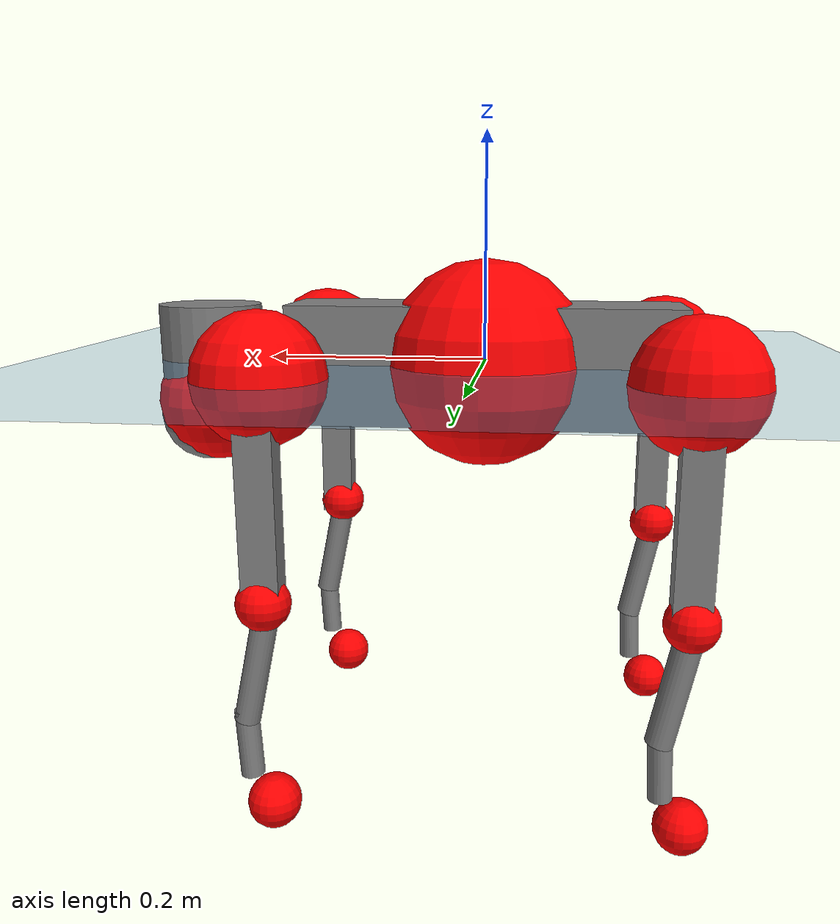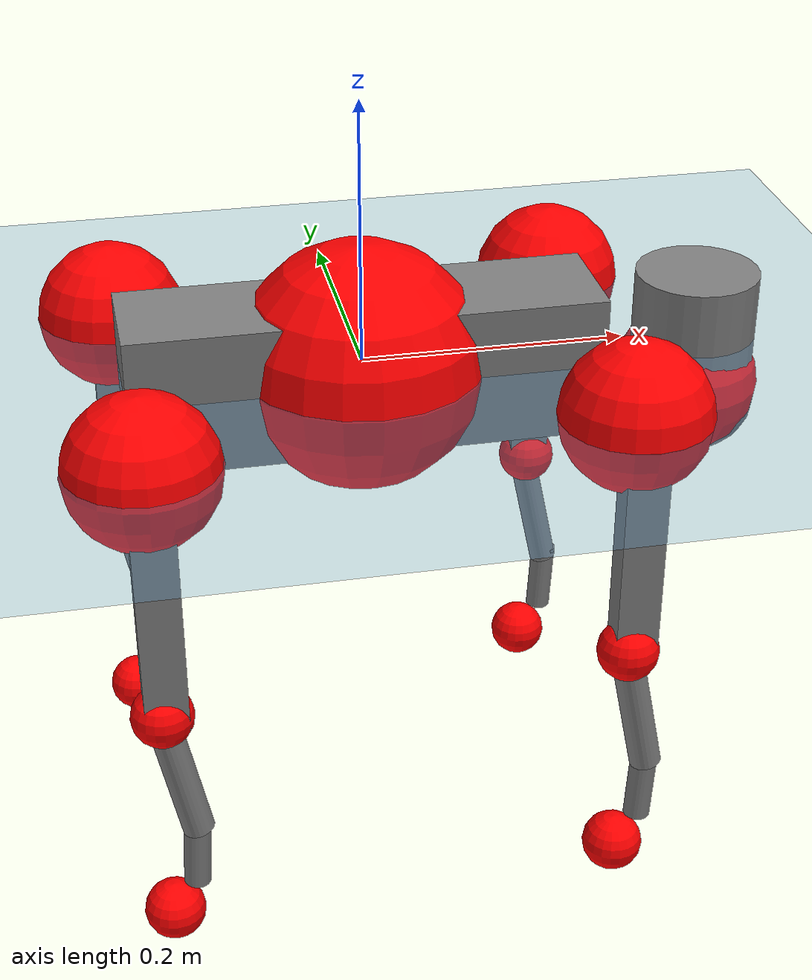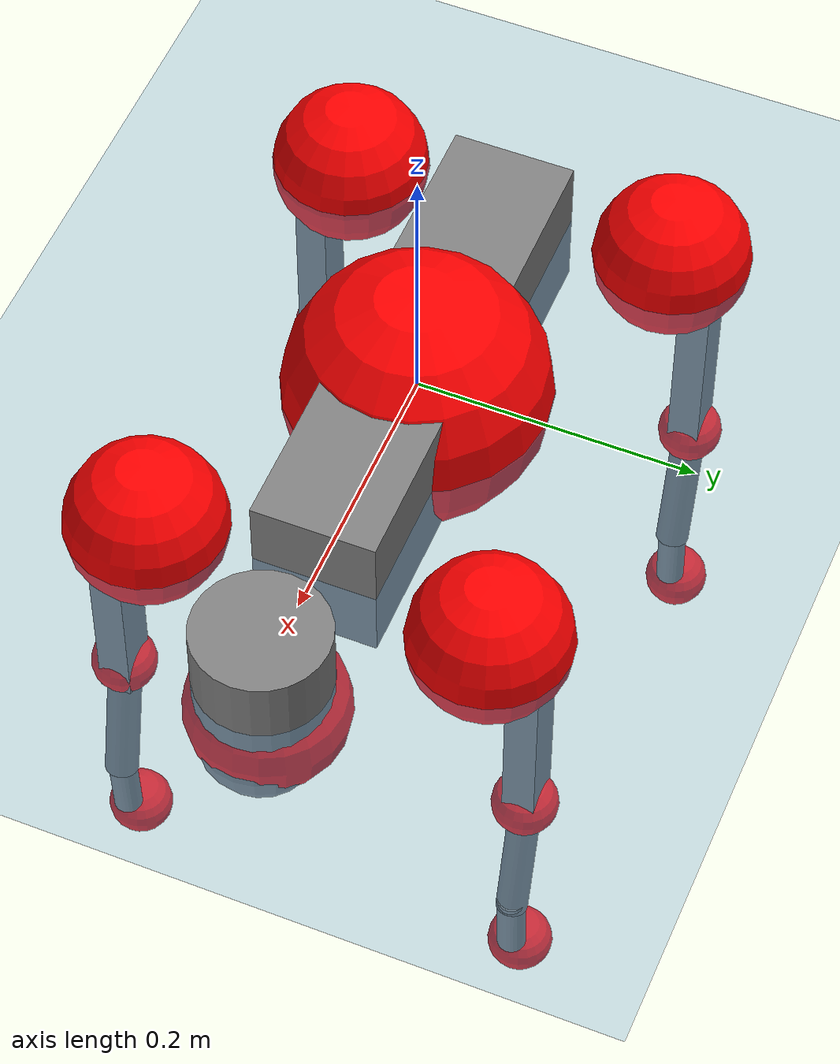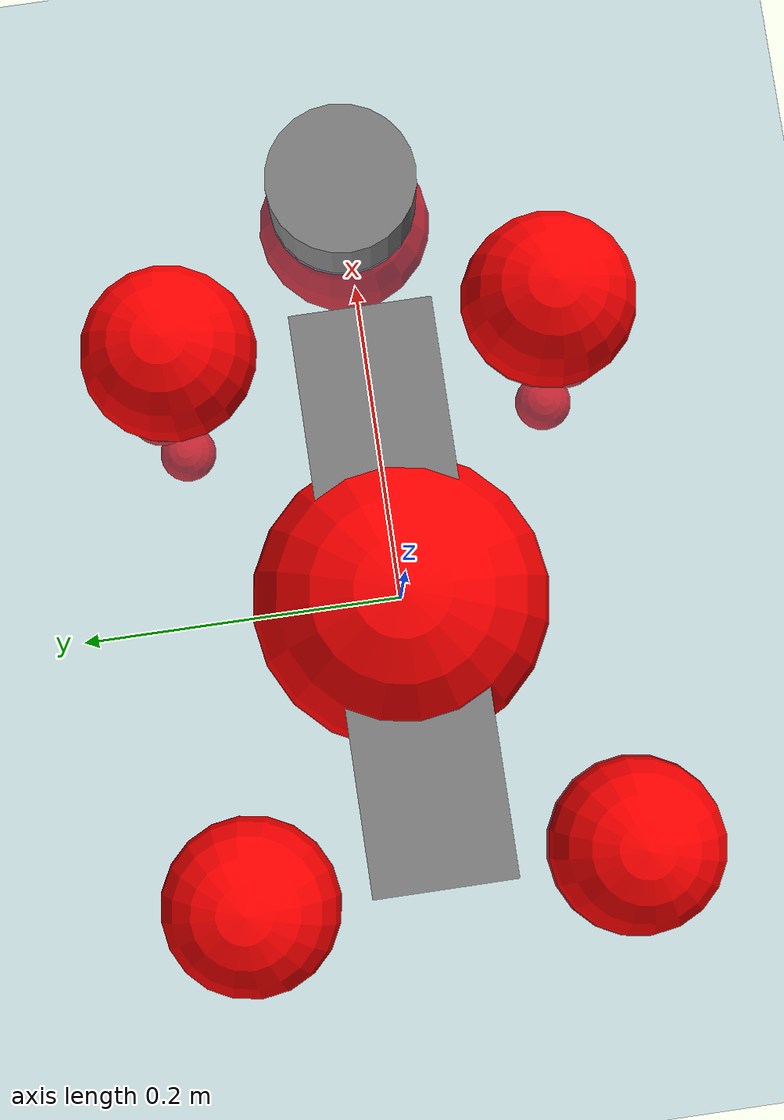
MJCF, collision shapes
<mujoco model="go2">
  <compiler angle="radian" assetdir="assets" balanceinertia="true" inertiafromgeom="false"/>

  <option timestep="0.005" density="1.2" viscosity="2e-05"/>

  <size nkey="1"/>

  <visual>
    <quality shadowsize="8192"/>
    <map shadowclip="0.5"/>
  </visual>

  <default>
    <default class="/">
      <geom contype="0" conaffinity="0" group="1" solref="-1000 -80"/>
      <site size="0.01 0.005 0.005" group="5"/>
      <general forcelimited="true" biastype="affine" gainprm="20" biasprm="0 -20 -0.5"/>
      <default class="go2">
        <joint armature="0.01" damping="0.01" frictionloss="0.2"/>
        <geom condim="1" margin="0.001"/>
        <default class="visual">
          <geom type="mesh" group="2"/>
        </default>
        <default class="collision">
          <geom group="3"/>
          <default class="foot">
            <geom size="0.022 0 0" condim="6" priority="1" friction="0.8 0.02 0.01" solimp="0.015 1 0.022"/>
          </default>
        </default>
        <default class="reward_collision_sphere">
          <geom group="5" rgba="1 0 0 1"/>
        </default>
      </default>
    </default>
  </default>

  <asset>
    <texture type="skybox" colorspace="auto" name="//unnamed_texture_0" builtin="gradient" rgb1="0.95 0.95 0.95" rgb2="0.95 0.95 0.95" width="100" height="600"/>
    <texture type="2d" colorspace="auto" name="texplane" builtin="checker" rgb1="0.345 0.575 0.748" rgb2="0.345 0.575 0.748" markrgb="1 1 1" width="512" height="512"/>
    <material name="MatPlane" class="/" texture="texplane" texuniform="true" texrepeat="2 2" specular="0.9"/>
    <material name="metal" class="/" rgba="0.9 0.95 0.95 1"/>
    <material name="black" class="/" rgba="0 0 0 1"/>
    <material name="white" class="/"/>
    <material name="gray" class="/" rgba="0.671705 0.692426 0.77427 1"/>
    <mesh name="base_0" class="/" file="base_0.obj"/>
    <mesh name="base_1" class="/" file="base_1.obj"/>
    <mesh name="base_2" class="/" file="base_2.obj"/>
    <mesh name="base_3" class="/" file="base_3.obj"/>
    <mesh name="base_4" class="/" file="base_4.obj"/>
    <mesh name="hip_0" class="/" file="hip_0.obj"/>
    <mesh name="hip_1" class="/" file="hip_1.obj"/>
    <mesh name="thigh_0" class="/" file="thigh_0.obj"/>
    <mesh name="thigh_1" class="/" file="thigh_1.obj"/>
    <mesh name="thigh_mirror_0" class="/" file="thigh_mirror_0.obj"/>
    <mesh name="thigh_mirror_1" class="/" file="thigh_mirror_1.obj"/>
    <mesh name="calf_0" class="/" file="calf_0.obj"/>
    <mesh name="calf_1" class="/" file="calf_1.obj"/>
    <mesh name="calf_mirror_0" class="/" file="calf_mirror_0.obj"/>
    <mesh name="calf_mirror_1" class="/" file="calf_mirror_1.obj"/>
    <mesh name="foot" class="/" file="foot.obj"/>
  </asset>

  <worldbody>
    <geom name="floor" class="/" size="100 100 0.125" type="plane" group="0" material="MatPlane"/>
    <light name="toplight_shadow" class="/" pos="0 0 5" dir="0.0990148 0.0990148 -0.990148" type="directional" ambient="0.04 0.04 0.04" diffuse="0.55 0.55 0.55" specular="0.12 0.12 0.12"/>
    <light name="toplight_fill" class="/" pos="0 0 5" dir="0.0990148 0.0990148 -0.990148" type="directional" castshadow="false" ambient="0.04 0.04 0.04" diffuse="0.3 0.3 0.3" specular="0.08 0.08 0.08"/>
    <body name="trunk" childclass="go2" pos="-0.000842944 -8.98242e-05 -0.00258458" quat="0.999999 0.000177163 -0.000752337 0.0011237">
      <inertial pos="0.0177575 0.0026493 -0.00487612" quat="0.00888361 0.707973 0.00466549 0.706168" mass="5.7505" diaginertia="0.0682539 0.127114 0.012654"/>
      <joint name="//unnamed_joint_0" type="free" armature="0" damping="0" frictionloss="0"/>
      <geom name="//unnamed_geom_1" class="visual" material="black" mesh="base_0"/>
      <geom name="//unnamed_geom_2" class="visual" material="black" mesh="base_1"/>
      <geom name="//unnamed_geom_3" class="visual" material="black" mesh="base_2"/>
      <geom name="//unnamed_geom_4" class="visual" material="white" mesh="base_3"/>
      <geom name="//unnamed_geom_5" class="visual" material="gray" mesh="base_4"/>
      <geom name="trunk_1" class="collision" size="0.176902 0.0439669 0.0536067" type="box"/>
      <geom name="trunk_2" class="collision" size="0.0470234 0.042321" pos="0.258418 0 0.00870488" type="cylinder"/>
      <geom name="trunk_3" class="collision" size="0.044202" pos="0.265672 0 -0.0522293"/>
      <geom name="//unnamed_geom_9" class="reward_collision_sphere" size="0.0940468"/>
      <geom name="//unnamed_geom_10" class="reward_collision_sphere" size="0.0564281" pos="0.253884 0 -0.039172"/>
      <site name="imu" pos="-0.0285468 0.00851585 0.0238331" size="0.00940468"/>
      <camera name="track" pos="0 -2.08837 0" quat="0.707107 0.707107 0 0" mode="trackcom"/>
      <camera name="ego_camera" pos="0.282899 0 0.039172" quat="-0.5 -0.5 0.5 0.5"/>
      <body name="FL_hip" pos="0.175849 0.0503175 0.0013164" quat="1 3.28301e-06 -2.77584e-06 4.0413e-05">
        <inertial pos="-0.00758363 0.00274505 -0.00222465" quat="0.49755 0.50632 0.494801 0.501255" mass="0.551456" diaginertia="0.000547147 0.000730337 0.000235513"/>
        <joint name="FL_hip_joint" pos="0 0 0" axis="0.999976 -0.00673782 0.0012838" range="-1.04585 1.07747" armature="0.00932445" damping="0" frictionloss="0.200833"/>
        <geom name="//unnamed_geom_11" class="visual" material="metal" mesh="hip_0"/>
        <geom name="//unnamed_geom_12" class="visual" material="gray" mesh="hip_1"/>
        <geom name="//unnamed_geom_13" class="collision" size="0.0432615 0.0188094" pos="0 0.0835349 0" quat="0.707107 0.707107 0 0" type="cylinder"/>
        <geom name="//unnamed_geom_14" class="reward_collision_sphere" size="0.0564281" pos="0 0.073093 0"/>
        <body name="FL_thigh" pos="-0.00349372 0.100637 0.00206886" quat="1 0.000144272 -2.76719e-05 5.07068e-05">
          <inertial pos="-0.00274966 -0.0231302 -0.0288367" quat="0.829424 0.0861781 -0.0212787 0.551522" mass="0.914157" diaginertia="0.00347471 0.00699926 0.000409958"/>
          <joint name="FL_thigh_joint" pos="0 0 0" axis="0.00226506 0.999997 0.000804878" stiffness="0.00971327" range="-1.59833 3.48527" armature="0.00838275" damping="0.0175522" frictionloss="0.188872"/>
          <geom name="//unnamed_geom_15" class="visual" material="metal" mesh="thigh_0"/>
          <geom name="//unnamed_geom_16" class="visual" material="gray" mesh="thigh_1"/>
          <geom name="//unnamed_geom_17" class="collision" size="0.10016 0.0115207 0.015988" pos="0 0 -0.092707" quat="0.707107 0 0.707107 0" type="box"/>
          <body name="FL_calf" pos="0.000547408 -7.7405e-05 -0.186112" quat="1 2.60261e-06 7.97073e-06 -1.10062e-05">
            <inertial pos="0.00343838 -0.00330513 -0.123469" quat="0.71132 0.00242479 -0.00520282 0.702845" mass="0.20007" diaginertia="0.000876832 0.00179428 2.64149e-05"/>
            <joint name="FL_calf_joint" pos="0 0 0" axis="0.0125998 0.999911 0.00437869" range="-2.77013 -0.800212" armature="0.00971015" damping="0.00122694" frictionloss="0.211729"/>
            <geom name="//unnamed_geom_18" class="visual" material="gray" mesh="calf_0"/>
            <geom name="//unnamed_geom_19" class="visual" material="black" mesh="calf_1"/>
            <geom name="FL_calf0" class="collision" size="0.0112856 0.0564281" pos="0.00725383 0 -0.0522293" quat="0.994493 0 -0.104807 0" type="cylinder"/>
            <geom name="//unnamed_geom_21" class="collision" size="0.0103451 0.0305652" pos="0.0181346 0 -0.128832" quat="0.999688 0 0.0249974 0" type="cylinder"/>
            <geom name="//unnamed_geom_22" class="visual" pos="0 0 -0.185414" quat="1 0 0 0" material="black" mesh="foot"/>
            <geom name="FL_foot" class="foot" size="0.0156015" pos="-0.00181346 0 -0.185414"/>
            <geom name="//unnamed_geom_24" class="reward_collision_sphere" size="0.0235117"/>
            <geom name="//unnamed_geom_25" class="reward_collision_sphere" size="0.0235117" pos="-0.00181346 0 -0.185414"/>
            <site name="FL_foot" class="foot" pos="-0.00181346 0 -0.185414" size="0.00940468"/>
          </body>
        </body>
      </body>
      <body name="FR_hip" pos="0.17539 -0.0476942 0.0018683" quat="0.999999 -2.00976e-05 -0.00109821 -0.000761408">
        <inertial pos="-0.00461823 -0.00164535 0.000512932" quat="0.502288 0.497857 0.507344 0.49239" mass="0.585028" diaginertia="0.00053744 0.000738714 0.000238339"/>
        <joint name="FR_hip_joint" pos="0 0 0" axis="0.999966 0.00786832 0.00264773" range="-1.10321 1.02092" armature="0.00905279" damping="0" frictionloss="0.20764"/>
        <geom name="//unnamed_geom_26" class="visual" pos="0 1.51318e-09 6.49035e-08" quat="4.63268e-05 1 0 0" material="metal" mesh="hip_0"/>
        <geom name="//unnamed_geom_27" class="visual" pos="0 2.45305e-09 -1.60531e-07" quat="4.63268e-05 1 0 0" material="gray" mesh="hip_1"/>
        <geom name="//unnamed_geom_28" class="collision" size="0.0432615 0.0188094" pos="0 -0.0835349 0" quat="0.707107 0.707107 0 0" type="cylinder"/>
        <geom name="//unnamed_geom_29" class="reward_collision_sphere" size="0.0564281" pos="0 -0.073093 0"/>
        <body name="FR_thigh" pos="-0.000337268 -0.101723 0.000781349" quat="1 5.76624e-05 -2.1934e-05 -0.000502164">
          <inertial pos="-0.0034128 0.0241347 -0.0283267" quat="0.550704 -0.0194984 0.0818344 0.83045" mass="0.988048" diaginertia="0.0036627 0.00700239 0.000442436"/>
          <joint name="FR_thigh_joint" pos="0 0 0" axis="-0.00132147 -0.999952 0.00973743" stiffness="0.0128529" range="-3.49014 1.53577" armature="0.00906568" damping="0.00557435" frictionloss="0.163564"/>
          <geom name="//unnamed_geom_30" class="visual" material="metal" mesh="thigh_mirror_0"/>
          <geom name="//unnamed_geom_31" class="visual" material="gray" mesh="thigh_mirror_1"/>
          <geom name="//unnamed_geom_32" class="collision" size="0.10016 0.0115207 0.015988" pos="0 0 -0.092707" quat="0.707107 0 0.707107 0" type="box"/>
          <body name="FR_calf" pos="-0.00336132 -0.00158682 -0.18294" quat="1 0.00023953 0.000142302 0.000379579">
            <inertial pos="0.00677498 -0.00197605 -0.120736" quat="0.70226 0.00285648 0.0110139 0.71183" mass="0.196394" diaginertia="0.00088152 0.00181498 2.501e-05"/>
            <joint name="FR_calf_joint" pos="0 0 0" axis="-0.000670079 -0.999999 -0.0014948" stiffness="0.00266121" range="0.826174 2.72945" armature="0.00929574" damping="0" frictionloss="0.178019"/>
            <geom name="//unnamed_geom_33" class="visual" material="gray" mesh="calf_mirror_0"/>
            <geom name="//unnamed_geom_34" class="visual" material="black" mesh="calf_mirror_1"/>
            <geom name="FR_calf0" class="collision" size="0.0122261 0.0564281" pos="0.00906729 0 -0.0522293" quat="0.995004 0 -0.0998334 0" type="cylinder"/>
            <geom name="//unnamed_geom_36" class="collision" size="0.0103451 0.0305652" pos="0.0181346 0 -0.128832" quat="0.999688 0 0.0249974 0" type="cylinder"/>
            <geom name="//unnamed_geom_37" class="visual" pos="0 0 -0.185414" quat="1 0 0 0" material="black" mesh="foot"/>
            <geom name="FR_foot" class="foot" size="0.0207056" pos="-0.00181346 0 -0.185414"/>
            <geom name="//unnamed_geom_39" class="reward_collision_sphere" size="0.0235117"/>
            <geom name="//unnamed_geom_40" class="reward_collision_sphere" size="0.0235117" pos="-0.00181346 0 -0.185414"/>
            <site name="FR_foot" class="foot" pos="-0.00181346 0 -0.185414" size="0.00940468"/>
          </body>
        </body>
      </body>
      <body name="RL_hip" pos="-0.175208 0.0466286 0.00108405" quat="1 -0.000164963 0.00021297 0.000462609">
        <inertial pos="0.00524783 -0.000360111 -0.00244764" quat="0.505184 0.497975 0.496395 0.500401" mass="0.556742" diaginertia="0.000523718 0.000727459 0.000227328"/>
        <joint name="RL_hip_joint" pos="0 0 0" axis="-0.999971 0.00756433 -0.000243838" range="-1.10443 1.0997" armature="0.0106723" damping="0.0147645" frictionloss="0.191275"/>
        <geom name="//unnamed_geom_41" class="visual" pos="-3.15717e-10 0 -6.18878e-08" quat="4.63268e-05 0 1 0" material="metal" mesh="hip_0"/>
        <geom name="//unnamed_geom_42" class="visual" pos="-5.11815e-10 0 -5.48857e-08" quat="4.63268e-05 0 1 0" material="gray" mesh="hip_1"/>
        <geom name="//unnamed_geom_43" class="collision" size="0.0432615 0.0188094" pos="0 0.0835349 0" quat="0.707107 0.707107 0 0" type="cylinder"/>
        <geom name="//unnamed_geom_44" class="reward_collision_sphere" size="0.0564281" pos="0 0.073093 0"/>
        <body name="RL_thigh" pos="-0.00102544 0.0971299 3.01161e-05" quat="0.999999 -0.00108316 0.000528713 -0.000305761">
          <inertial pos="-0.000948079 -0.0254823 -0.0310263" quat="0.8297 0.0845074 -0.0201205 0.551409" mass="0.982239" diaginertia="0.00387793 0.00736682 0.000464506"/>
          <joint name="RL_thigh_joint" pos="0 0 0" axis="0.0155689 0.999846 0.00810885" stiffness="0.0105352" range="-0.56446 4.54309" armature="0.00973889" damping="0.00483438" frictionloss="0.195708"/>
          <geom name="//unnamed_geom_45" class="visual" material="metal" mesh="thigh_0"/>
          <geom name="//unnamed_geom_46" class="visual" material="gray" mesh="thigh_1"/>
          <geom name="//unnamed_geom_47" class="collision" size="0.10016 0.0115207 0.015988" pos="0 0 -0.092707" quat="0.707107 0 0.707107 0" type="box"/>
          <body name="RL_calf" pos="-0.00156741 0.000474562 -0.188458" quat="0.999999 0.000164274 -0.000920201 0.000784001">
            <inertial pos="0.00305309 0.00191923 -0.125373" quat="0.719076 -0.00500681 -0.00594707 0.694888" mass="0.195406" diaginertia="0.000884389 0.00173562 2.59577e-05"/>
            <joint name="RL_calf_joint" pos="0 0 0" axis="-0.00754089 0.999969 -0.00215812" stiffness="0.00578749" range="-2.74198 -0.882181" armature="0.0107429" damping="0" frictionloss="0.191011"/>
            <geom name="//unnamed_geom_48" class="visual" material="gray" mesh="calf_0"/>
            <geom name="//unnamed_geom_49" class="visual" material="black" mesh="calf_1"/>
            <geom name="RL_calf0" class="collision" size="0.0122261 0.0564281" pos="0.00906729 0 -0.0522293" quat="0.995004 0 -0.0998334 0" type="cylinder"/>
            <geom name="//unnamed_geom_51" class="collision" size="0.0103451 0.0305652" pos="0.0181346 0 -0.128832" quat="0.999688 0 0.0249974 0" type="cylinder"/>
            <geom name="//unnamed_geom_52" class="visual" pos="0 0 -0.185414" quat="1 0 0 0" material="black" mesh="foot"/>
            <geom name="RL_foot" class="foot" size="0.019655" pos="-0.00181346 0 -0.185414"/>
            <geom name="//unnamed_geom_54" class="reward_collision_sphere" size="0.0235117"/>
            <geom name="//unnamed_geom_55" class="reward_collision_sphere" size="0.0235117" pos="-0.00181346 0 -0.185414"/>
            <site name="RL_foot" class="foot" pos="-0.00181346 0 -0.185414" size="0.00940468"/>
          </body>
        </body>
      </body>
      <body name="RR_hip" pos="-0.172677 -0.0492235 -0.00248903" quat="1 0.000366602 -0.000353399 -4.74581e-06">
        <inertial pos="0.00213968 -0.0037621 -0.000919591" quat="0.495412 0.49708 0.509224 0.498166" mass="0.565622" diaginertia="0.00057816 0.000769009 0.000251854"/>
        <joint name="RR_hip_joint" pos="0 0 0" axis="-0.999924 0.0112745 -0.00504488" stiffness="0.00129234" range="-1.06329 1.04693" armature="0.00935764" damping="0.00860592" frictionloss="0.210546"/>
        <geom name="//unnamed_geom_56" class="visual" pos="3.20476e-10 1.51318e-09 -1.26791e-07" quat="2.14617e-09 4.63268e-05 4.63268e-05 -1" material="metal" mesh="hip_0"/>
        <geom name="//unnamed_geom_57" class="visual" pos="5.00045e-10 2.45305e-09 1.05646e-07" quat="2.14617e-09 4.63268e-05 4.63268e-05 -1" material="gray" mesh="hip_1"/>
        <geom name="//unnamed_geom_58" class="collision" size="0.0432615 0.0188094" pos="0 -0.0835349 0" quat="0.707107 0.707107 0 0" type="cylinder"/>
        <geom name="//unnamed_geom_59" class="reward_collision_sphere" size="0.0564281" pos="0 -0.073093 0"/>
        <body name="RR_thigh" pos="0.00156792 -0.0989439 -0.0021882" quat="1 -7.18731e-05 0.000381032 -0.000524371">
          <inertial pos="-0.00130149 0.0226126 -0.0299803" quat="0.558307 -0.013659 0.087444 0.8249" mass="0.933844" diaginertia="0.00379212 0.00726378 0.000436386"/>
          <joint name="RR_thigh_joint" pos="0 0 0" axis="-0.00623345 -0.999912 0.01171" range="-4.54285 0.472516" armature="0.00930532" damping="0.0041571" frictionloss="0.195274"/>
          <geom name="//unnamed_geom_60" class="visual" material="metal" mesh="thigh_mirror_0"/>
          <geom name="//unnamed_geom_61" class="visual" material="gray" mesh="thigh_mirror_1"/>
          <geom name="//unnamed_geom_62" class="collision" size="0.10016 0.0115207 0.015988" pos="0 0 -0.092707" quat="0.707107 0 0.707107 0" type="box"/>
          <body name="RR_calf" pos="-0.00274394 0.00215935 -0.187746" quat="0.999999 0.000395664 0.00091305 0.000548082">
            <inertial pos="0.00510911 0.00118396 -0.123796" quat="0.708343 0.00174387 -0.00860073 0.705813" mass="0.208128" diaginertia="0.000946539 0.0018897 2.62473e-05"/>
            <joint name="RR_calf_joint" pos="0 0 0" axis="0.0116334 -0.999894 0.00872083" range="0.890539 2.74479" armature="0.00944402" damping="0.00274414" frictionloss="0.194392"/>
            <geom name="//unnamed_geom_63" class="visual" material="gray" mesh="calf_mirror_0"/>
            <geom name="//unnamed_geom_64" class="visual" material="black" mesh="calf_mirror_1"/>
            <geom name="RR_calf0" class="collision" size="0.0122261 0.0564281" pos="0.00906729 0 -0.0522293" quat="0.995004 0 -0.0998334 0" type="cylinder"/>
            <geom name="//unnamed_geom_66" class="collision" size="0.0103451 0.0305652" pos="0.0181346 0 -0.128832" quat="0.999688 0 0.0249974 0" type="cylinder"/>
            <geom name="//unnamed_geom_67" class="visual" pos="0 0 -0.185414" quat="1 0 0 0" material="black" mesh="foot"/>
            <geom name="RR_foot" class="foot" size="0.023498" pos="-0.00181346 0 -0.185414"/>
            <geom name="//unnamed_geom_69" class="reward_collision_sphere" size="0.0235117"/>
            <geom name="//unnamed_geom_70" class="reward_collision_sphere" size="0.0235117" pos="-0.00181346 0 -0.185414"/>
            <site name="RR_foot" class="foot" pos="-0.00181346 0 -0.185414" size="0.00940468"/>
          </body>
        </body>
      </body>
    </body>
  </worldbody>

  <contact>
    <pair class="/" geom1="floor" geom2="FL_foot" name="//unnamed_contact_0"/>
    <pair class="/" geom1="floor" geom2="FR_foot" name="//unnamed_contact_1"/>
    <pair class="/" geom1="floor" geom2="RL_foot" name="//unnamed_contact_2"/>
    <pair class="/" geom1="floor" geom2="RR_foot" name="//unnamed_contact_3"/>
  </contact>

  <actuator>
    <general name="FL_hip" class="/" joint="FL_hip_joint" forcerange="-21.7839 21.7839" gainprm="18.3931" biasprm="0 -18.3931 -0.477148"/>
    <general name="FL_thigh" class="/" joint="FL_thigh_joint" forcerange="-21.559 21.559" gainprm="18.3931" biasprm="0 -18.3931 -0.477148"/>
    <general name="FL_calf" class="/" joint="FL_calf_joint" forcerange="-45.2885 45.2885" gainprm="18.3931" biasprm="0 -18.3931 -0.477148"/>
    <general name="FR_hip" class="/" joint="FR_hip_joint" forcerange="-23.1367 23.1367" gainprm="18.3931" biasprm="0 -18.3931 -0.477148"/>
    <general name="FR_thigh" class="/" joint="FR_thigh_joint" forcerange="-23.51 23.51" gainprm="18.3931" biasprm="0 -18.3931 -0.477148"/>
    <general name="FR_calf" class="/" joint="FR_calf_joint" forcerange="-42.0074 42.0074" gainprm="18.3931" biasprm="0 -18.3931 -0.477148"/>
    <general name="RL_hip" class="/" joint="RL_hip_joint" forcerange="-21.9729 21.9729" gainprm="18.3931" biasprm="0 -18.3931 -0.477148"/>
    <general name="RL_thigh" class="/" joint="RL_thigh_joint" forcerange="-20.1381 20.1381" gainprm="18.3931" biasprm="0 -18.3931 -0.477148"/>
    <general name="RL_calf" class="/" joint="RL_calf_joint" forcerange="-47.2671 47.2671" gainprm="18.3931" biasprm="0 -18.3931 -0.477148"/>
    <general name="RR_hip" class="/" joint="RR_hip_joint" forcerange="-22.4125 22.4125" gainprm="18.3931" biasprm="0 -18.3931 -0.477148"/>
    <general name="RR_thigh" class="/" joint="RR_thigh_joint" forcerange="-22.3092 22.3092" gainprm="18.3931" biasprm="0 -18.3931 -0.477148"/>
    <general name="RR_calf" class="/" joint="RR_calf_joint" forcerange="-45.9034 45.9034" gainprm="18.3931" biasprm="0 -18.3931 -0.477148"/>
  </actuator>

  <sensor>
    <gyro site="imu" name="imu_angular_velocity"/>
    <velocimeter site="imu" name="imu_linear_velocity"/>
    <framelinvel objtype="site" objname="FL_foot" name="FL_foot_global_linear_velocity"/>
    <framelinvel objtype="site" objname="FR_foot" name="FR_foot_global_linear_velocity"/>
    <framelinvel objtype="site" objname="RL_foot" name="RL_foot_global_linear_velocity"/>
    <framelinvel objtype="site" objname="RR_foot" name="RR_foot_global_linear_velocity"/>
  </sensor>

  <keyframe>
    <key name="home" qpos="0 0 0.325 1 0 0 0 0.1 0.8 -1.5 -0.1 -0.8 1.5 -0.1 0.8 -1.5 0.1 -0.8 1.5"/>
  </keyframe>
</mujoco>
